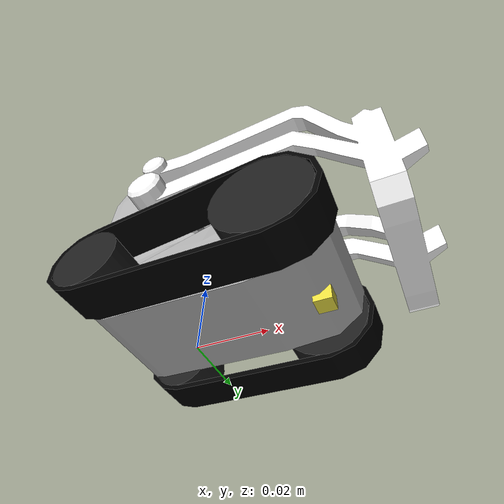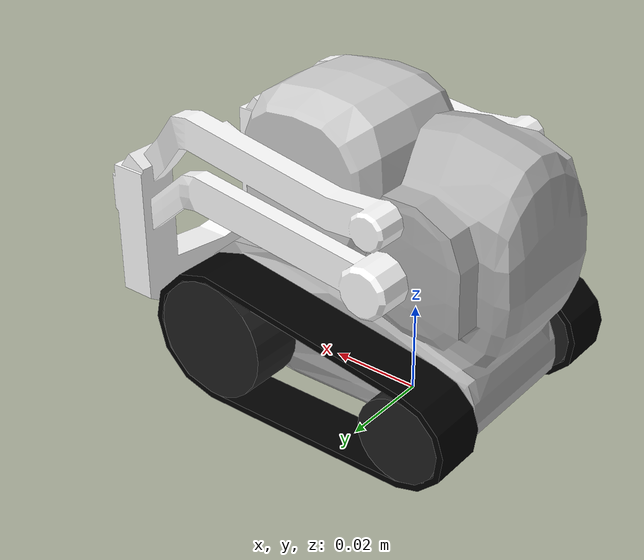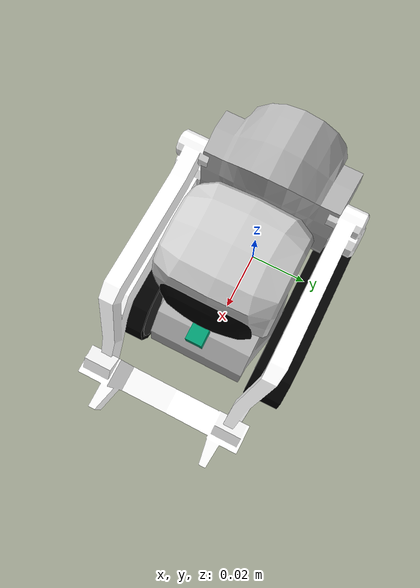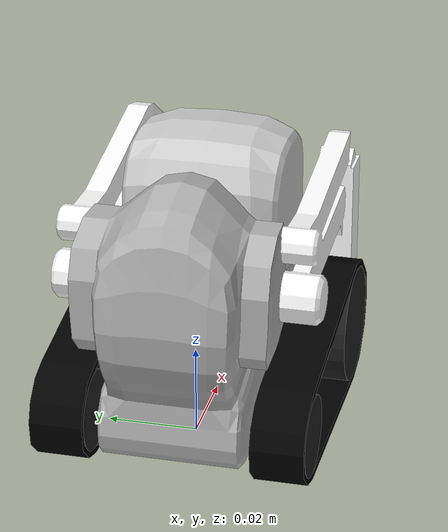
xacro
<?xml version="1.0"?>
<robot name="robot" xmlns:xacro="http://www.ros.org/wiki/xacro">

  <!-- Inertia util -->
  <xacro:include filename="$(find anki_description)/urdf/inertia.xacro"/>

  <link name="base_footprint"/>
  <joint name="base_footprint_joint" type="fixed">
    <origin rpy="0 0 0" xyz="0 0 0.027"/>
    <parent link="base_footprint"/>
    <child link="base_link"/>
  </joint>

  <!-- Body -->
  <link name="base_link">
    <visual>
      <geometry>
        <!-- TODO: check why this collada file won't load into gazebo -->
        <mesh filename="package://anki_description/meshes/body3.dae"  />
      </geometry>
    </visual>
    <collision>
      <geometry>
        <mesh filename="package://anki_description/meshes/body3.dae"  />
      </geometry>
    </collision>
  </link>
  <inertial>
    <mass value="0.06"/>
    <xacro:box_inertia m="0.06" x="0.073" y="0.043" z="0.061" />
  </inertial>
  <gazebo reference="base_link">
      <selfCollide>true</selfCollide>
      <mu1 value="200.0"/>
      <mu2 value="100.0"/>
      <kp value="10000000.0"/>
      <kd value="1.0"/>
  </gazebo>

  <!-- Head -->
  <link name="head">

    <visual>
      <geometry>
        <mesh filename="package://anki_description/meshes/cozmo_head.dae" />
      </geometry>
    </visual>
    <collision>
      <geometry>
        <mesh filename="package://anki_description/meshes/cozmo_head.dae"/>
      </geometry>
    </collision>
    <inertial>
      <mass value="0.01"/>
      <xacro:box_inertia m="0.01" x="0.036" y="0.038" z="0.041" />
    </inertial>
  </link>
  <gazebo reference="head">
      <kp>1000000000.0</kp>
      <kd>1000000000.0</kd>
      <mu1>10.0</mu1>
      <mu2>10.0</mu2>
      <self_collide>0</self_collide>
  </gazebo>

  <!-- lifter -->
  <link name="full_lift">
    <xacro:box_inertia m="0.01" x="0.081" y="0.058" z="0.050"/>
    <visual>
      <geometry>
        <mesh filename="package://anki_description/meshes/cozmo_lift.dae"/>
      </geometry>
    </visual>
    <collision>
      <geometry>
        <mesh filename="package://anki_description/meshes/cozmo_lift.dae"/>
      </geometry>
    </collision>
  </link>

  <!-- components -->
  <xacro:include filename="$(find anki_description)/urdf/joints.xacro"/>
  <xacro:include filename="$(find anki_description)/urdf/base.xacro"/>
  <xacro:include filename="$(find anki_description)/urdf/cozmo_cam.xacro"/>
  <xacro:include filename="$(find anki_description)/urdf/cozmo_drop.xacro"/>
  <xacro:include filename="$(find anki_description)/urdf/imu.xacro"/>
  <xacro:imu ankirobot="cozmo"/>

</robot>

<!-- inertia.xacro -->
<robot xmlns:xacro="http://www.ros.org/wiki/xacro">

  <macro name="cylinder_inertia" params="m r h">
        <inertia    ixx="${m*(3*r*r+h*h)/12}" ixy = "0" ixz = "0"
                    iyy="${m*(3*r*r+h*h)/12}" iyz = "0"
                    izz="${m*r*r/2}" />
  </macro>

  <macro name="box_inertia" params="m x y z">
          <inertia  ixx="${m*(y*y+z*z)/12}" ixy = "0" ixz = "0"
                    iyy="${m*(x*x+z*z)/12}" iyz = "0"
                    izz="${m*(x*x+z*z)/12}" />
  </macro>

  <macro name="sphere_inertia" params="m r">
          <inertia  ixx="${2*m*r*r/5}" ixy = "0" ixz = "0"
                    iyy="${2*m*r*r/5}" iyz = "0"
                    izz="${2*m*r*r/5}" />
  </macro>

</robot>

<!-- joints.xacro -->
<robot xmlns:xacro="http://www.ros.org/wiki/xacro">

  <joint name="base_to_head" type="revolute">
    <parent link="base_link"/>
    <child link="head"/>
    <origin xyz="0.0174507 0 0.022003"/>
    <limit lower="-0.52" upper="0.17" effort="100" velocity="10"/>
    <!-- Damping breaks the model (?), keep it 0.0 -->
    <dynamics damping="0.0" friction="0.1"/>
    <axis xyz="0 1 0"/>
  </joint>

  <joint name="base_to_lift" type="revolute">
    <parent link="base_link"/>
    <child link="full_lift"/>
    <origin xyz="-0.005 0 0.013"/>
    <limit lower="-0.8" upper="0" effort="10" velocity="10"/>
    <dynamics damping="0.0" friction="0.1"/>
    <axis xyz="0 1 0"/>
  </joint>

  <!-- Transmissions for joints -->

  <transmission name="base_to_head_trans">
      <type>transmission_interface/SimpleTransmission</type>
      <joint name="base_to_head">
        <hardwareInterface>hardware_interface/PositionJointInterface</hardwareInterface>
      </joint>
      <actuator name="base_to_headMotor">
        <hardwareInterface>hardware_interface/PositionJointInterface</hardwareInterface>
        <mechanicalReduction>1</mechanicalReduction>
        <motorTorqueConstant>1</motorTorqueConstant>
      </actuator>
  </transmission>

  <transmission name="base_to_lift_trans">
      <type>transmission_interface/SimpleTransmission</type>
      <joint name="base_to_lift">
        <hardwareInterface>hardware_interface/PositionJointInterface</hardwareInterface>
      </joint>
      <actuator name="base_to_liftMotor">
        <hardwareInterface>hardware_interface/PositionJointInterface</hardwareInterface>
        <mechanicalReduction>1</mechanicalReduction>
        <motorTorqueConstant>1</motorTorqueConstant>
      </actuator>
  </transmission>

</robot>

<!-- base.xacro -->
<robot xmlns:xacro="http://www.ros.org/wiki/xacro">

  <xacro:macro name="wheel" params="link_name *origin radius">
    <link name="${link_name}">
      <visual>
        <material name="black"/>
        <origin rpy="0 0 0" xyz="0 0 0"/>
        <geometry>
          <cylinder radius="${radius}" length="0.0116739"/>
        </geometry>
      </visual>
      <collision>
        <material name="black"/>
        <origin rpy="0 0 0" xyz="0 0 0"/>
        <geometry>
            <cylinder radius="${radius}" length="0.0116739"/>
        </geometry>
      </collision>
      <inertial>
        <origin rpy="0 0 0" xyz="0 0 0"/>
        <geometry>
          <cylinder radius="${radius}" length="0.0116739"/>
        </geometry>
        <mass value="0.01"/>
        <xacro:cylinder_inertia m="0.01" r="${radius}" h="0.01167"/>
      </inertial>
    </link>
    <gazebo reference="${link_name}">
      <material>Gazebo/Grey</material>
    </gazebo>
    <joint name="${link_name}_joint" type="continuous">
        <parent link="base_link"/>
        <child link="${link_name}"/>
        <xacro:insert_block name="origin"/>
        <axis xyz="0 0 1"/>
    </joint>
    <transmission name="${link_name}_transmission">
        <type>transmission_interface/SimpleTransmission</type>
        <joint name="${link_name}_joint">
            <hardwareInterface>hardware_interface/VelocityJointInterface</hardwareInterface>
        </joint>
        <actuator name="${link_name}_motor">
            <hardwareInterface>hardware_interface/VelocityJointInterface</hardwareInterface>
            <mechanicalReduction>30</mechanicalReduction>
        </actuator>
    </transmission>
    <gazebo reference="${link_name}">
      <selfCollide>True</selfCollide>
    </gazebo>
  </xacro:macro>

<xacro:wheel link_name="front_left_wheel" radius="0.01314">
  <origin xyz="0.03 0.024 -0.012" rpy="${-pi/2} 0 0"/>
</xacro:wheel>

<xacro:wheel link_name="front_right_wheel" radius="0.01314">
  <origin xyz="0.03 -0.024 -0.012" rpy="${-pi/2} 0 0"/>
</xacro:wheel>

<xacro:wheel link_name="rear_left_wheel" radius="0.008995">
  <origin xyz="-0.017 0.024 -0.0151707" rpy="${-pi/2} 0 0"/>
</xacro:wheel>

<xacro:wheel link_name="rear_right_wheel" radius="0.008995">
  <origin xyz="-0.017 -0.024 -0.0151707" rpy="${-pi/2} 0 0"/>
</xacro:wheel>

<link name="left_belt">
  <visual>
    <geometry>
      <mesh filename="package://anki_description/meshes/cozmo_belt.dae" />
    </geometry>
  </visual>
</link>
<joint name="wheel_left_belt" type="fixed">
  <parent link="base_link"/>
  <child link="left_belt"/>
  <origin xyz="0.00945088 0.024 -0.0133211"/>
</joint>

<link name="right_belt">
  <visual>
    <geometry>
      <mesh filename="package://anki_description/meshes/cozmo_belt.dae" />
    </geometry>
  </visual>
</link>
<joint name="wheel_right_belt" type="fixed">
  <parent link="base_link"/>
  <child link="right_belt"/>
  <origin xyz="0.00945088 -0.024 -0.0133211"/>
</joint>

<gazebo>
    <plugin name="skid_steer_drive_controller" filename="libgazebo_ros_skid_steer_drive.so">
        <updateRate>25.0</updateRate>
        <robotNamespace>/</robotNamespace>
        <leftFrontJoint>front_left_wheel_joint</leftFrontJoint>
        <rightFrontJoint>front_right_wheel_joint</rightFrontJoint>
        <leftRearJoint>rear_left_wheel_joint</leftRearJoint>
        <rightRearJoint>rear_right_wheel_joint</rightRearJoint>
        <wheelSeparation>0.048</wheelSeparation>
        <wheelDiameter>0.026281</wheelDiameter>
        <robotBaseFrame>base_footprint</robotBaseFrame>
        <torque>1.0</torque>
        <commandTopic>cmd_vel</commandTopic>
        <odometryTopic>odom</odometryTopic>
        <broadcastTF>true</broadcastTF>
        <odometryFrame>odom</odometryFrame>
        <covariance_x>0.0001</covariance_x>
        <covariance_y>0.0001</covariance_y>
        <covariance_yaw>0.001</covariance_yaw>
    </plugin>
</gazebo>

</robot>

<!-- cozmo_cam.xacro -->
<robot xmlns:xacro="http://www.ros.org/wiki/xacro">

  <link name="camera_link">
    <visual>
      <geometry>
        <box size="0.005 0.005 0.005"/>
      </geometry>
    </visual>
  </link>

  <joint name="head_camera_joint" type="fixed">
  <parent link="head"/>
  <child link="camera_link"/>
  <origin xyz="0.020813 0 -0.0071471" rpy="0 0 0"/>
  </joint>

    <gazebo reference="camera_link">
      <sensor type="camera" name="cozmo_camera">
        <update_rate>10.0</update_rate>
        <camera name="headcamera">
          <horizontal_fov>1.3962634</horizontal_fov>
          <image>
            <width>400</width>
            <height>400</height>
            <format>R8G8B8</format>
          </image>
          <clip>
            <near>0.01</near>
            <far>100</far>
          </clip>
          <noise>
            <type>gaussian</type>

            <mean>0.0</mean>
            <stddev>0.007</stddev>
          </noise>
        </camera>
        <plugin name="camera_controller" filename="libgazebo_ros_camera.so">
          <alwaysOn>true</alwaysOn>
          <updateRate>10.0</updateRate>
          <cameraName>cozmo_camera</cameraName>
          <imageTopicName>/cozmo/camera</imageTopicName>
          <cameraInfoTopicName>/cozmo/camera_info</cameraInfoTopicName>
          <frameName>camera_link</frameName>
          <hackBaseline>0.07</hackBaseline>
          <distortionK1>0.0</distortionK1>
          <distortionK2>0.0</distortionK2>
          <distortionK3>0.0</distortionK3>
          <distortionT1>0.0</distortionT1>
          <distortionT2>0.0</distortionT2>
        </plugin>
      </sensor>
    </gazebo>

</robot>

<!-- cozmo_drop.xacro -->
<robot xmlns:xacro="http://www.ros.org/wiki/xacro">

  <link name="drop_ir">
    <visual>
      <geometry>
        <box size="0.005 0.005 0.005"/>
      </geometry>
    </visual>
  </link>

  <joint name="drop_ir_joint" type="fixed">
    <parent link="base_link"/>
    <child link="drop_ir"/>
    <origin xyz="0.0351028 0 -0.0213898" rpy="0 1.57 0" />
  </joint>

  <gazebo reference="drop_ir">
    <sensor type="ray" name="ranger">
      <pose>0 0 0 0 0 0</pose>
      <visualize>true</visualize>
      <update_rate>50</update_rate>
      <ray>
         <scan>
            <horizontal>
               <samples>10</samples>
               <resolution>1</resolution>
               <min_angle>-0.14835</min_angle>
               <max_angle>0.14835</max_angle>
            </horizontal>
            <vertical>
               <samples>10</samples>
               <resolution>1</resolution>
               <min_angle>-0.14835</min_angle>
               <max_angle>0.14835</max_angle>
            </vertical>
         </scan>
         <range>
            <min>0.001</min>
            <max>0.02</max>
            <resolution>0.02</resolution>
         </range>
      </ray>
      <plugin filename="libgazebo_ros_range.so" name="gazebo_ros_range">
         <gaussianNoise>0.005</gaussianNoise>
         <alwaysOn>true</alwaysOn>
         <updateRate>50</updateRate>
         <topicName>/cozmo/drop_sensor</topicName>
         <frameName>drop_ir</frameName>
         <radiation>INFRARED</radiation>
         <fov>0.2967</fov>
      </plugin>
    </sensor>
  </gazebo>

</robot>

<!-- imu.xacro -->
<robot xmlns:xacro="http://www.ros.org/wiki/xacro">

<xacro:macro name="imu" params="ankirobot">
  <link name="imu"/>

  <joint name="imu_joint" type="fixed">
    <parent link="head"/>
    <child link="imu"/>
    <origin xyz="0.0 0 0.0" rpy="0 0 0" />
  </joint>

  <gazebo reference="imu">
    <gravity>true</gravity>
    <sensor name="imu_sensor" type="imu">
      <always_on>true</always_on>
      <update_rate>100</update_rate>
      <visualize>true</visualize>
      <topic>${ankirobot}/imu</topic>
      <plugin filename="libgazebo_ros_imu_sensor.so" name="imu_plugin">
        <topicName>${ankirobot}/imu</topicName>
        <bodyName>imu</bodyName>
        <updateRateHZ>10.0</updateRateHZ>
        <gaussianNoise>${0.0017*0.0017}</gaussianNoise>
        <xyzOffset>0 0 0</xyzOffset>
        <rpyOffset>0 0 0</rpyOffset>
        <frameName>imu</frameName>
      </plugin>
      <pose>0 0 0 0 0 0</pose>
    </sensor>
  </gazebo>
</xacro:macro>

</robot>
